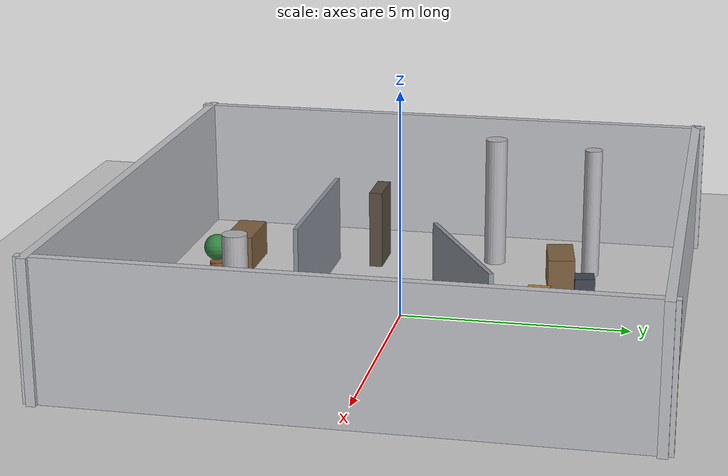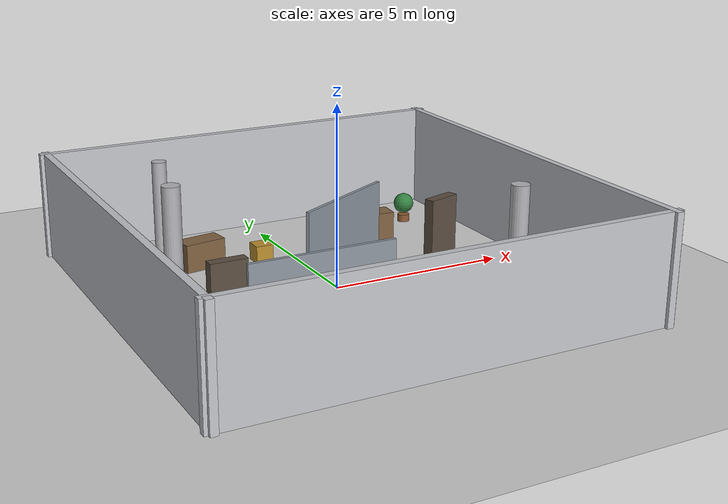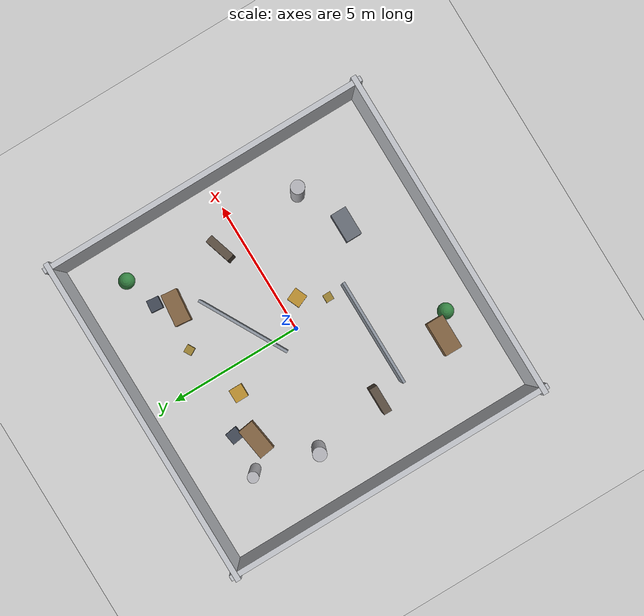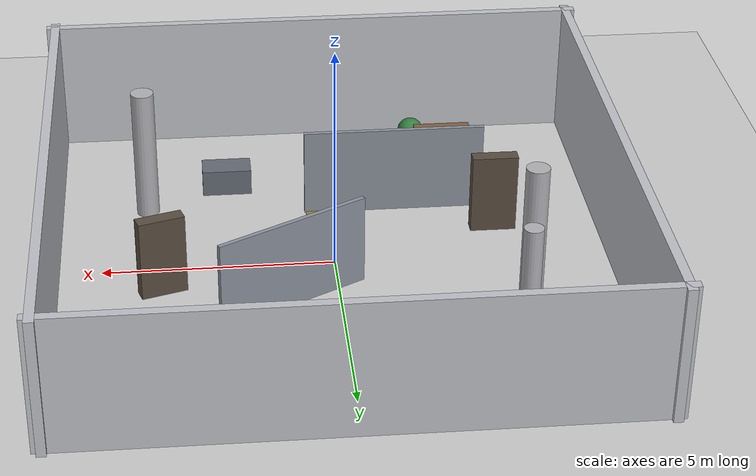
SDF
<?xml version="1.0"?>
<sdf version="1.7">
  <world name="gemstone_office">

    <include>
      <uri>model://ground_plane</uri>
    </include>
    <include>
      <uri>model://sun</uri>
    </include>

    <physics type="ode">
      <max_step_size>0.001</max_step_size>
      <real_time_factor>1</real_time_factor>
      <real_time_update_rate>1000</real_time_update_rate>
    </physics>

    <scene>
      <ambient>0.6 0.6 0.6 1.0</ambient>
      <background>0.72 0.78 0.82 1.0</background>
      <shadows>true</shadows>
    </scene>

    <!-- ==================== Dış duvarlar ==================== -->
    <model name="wall_north">
      <static>true</static>
      <pose>0 -6 1.5 0 0 0</pose>
      <link name="link">
        <collision name="collision">
          <geometry><box><size>12.4 0.2 3.0</size></box></geometry>
        </collision>
        <visual name="visual">
          <geometry><box><size>12.4 0.2 3.0</size></box></geometry>
          <material>
            <ambient>0.75 0.76 0.78 1.0</ambient>
            <diffuse>0.75 0.76 0.78 1.0</diffuse>
            <specular>0.1 0.1 0.1 1.0</specular>
          </material>
        </visual>
      </link>
    </model>

    <model name="wall_south">
      <static>true</static>
      <pose>0 6 1.5 0 0 0</pose>
      <link name="link">
        <collision name="collision">
          <geometry><box><size>12.4 0.2 3.0</size></box></geometry>
        </collision>
        <visual name="visual">
          <geometry><box><size>12.4 0.2 3.0</size></box></geometry>
          <material>
            <ambient>0.75 0.76 0.78 1.0</ambient>
            <diffuse>0.75 0.76 0.78 1.0</diffuse>
            <specular>0.1 0.1 0.1 1.0</specular>
          </material>
        </visual>
      </link>
    </model>

    <model name="wall_west">
      <static>true</static>
      <pose>-6 0 1.5 0 0 0</pose>
      <link name="link">
        <collision name="collision">
          <geometry><box><size>0.2 12.4 3.0</size></box></geometry>
        </collision>
        <visual name="visual">
          <geometry><box><size>0.2 12.4 3.0</size></box></geometry>
          <material>
            <ambient>0.75 0.76 0.78 1.0</ambient>
            <diffuse>0.75 0.76 0.78 1.0</diffuse>
            <specular>0.1 0.1 0.1 1.0</specular>
          </material>
        </visual>
      </link>
    </model>

    <model name="wall_east">
      <static>true</static>
      <pose>6 0 1.5 0 0 0</pose>
      <link name="link">
        <collision name="collision">
          <geometry><box><size>0.2 12.4 3.0</size></box></geometry>
        </collision>
        <visual name="visual">
          <geometry><box><size>0.2 12.4 3.0</size></box></geometry>
          <material>
            <ambient>0.75 0.76 0.78 1.0</ambient>
            <diffuse>0.75 0.76 0.78 1.0</diffuse>
            <specular>0.1 0.1 0.1 1.0</specular>
          </material>
        </visual>
      </link>
    </model>

    <!-- ==================== İç bölme duvarları ==================== -->
    <model name="partition_1">
      <static>true</static>
      <pose>-1.5 -2.2 1.0 0 0 0</pose>
      <link name="link">
        <collision name="collision">
          <geometry><box><size>4.0 0.1 2.0</size></box></geometry>
        </collision>
        <visual name="visual">
          <geometry><box><size>4.0 0.1 2.0</size></box></geometry>
          <material>
            <ambient>0.55 0.58 0.62 1.0</ambient>
            <diffuse>0.55 0.58 0.62 1.0</diffuse>
            <specular>0.1 0.1 0.1 1.0</specular>
          </material>
        </visual>
      </link>
    </model>

    <model name="partition_2">
      <static>true</static>
      <pose>1.0 1.5 1.0 0 0 0.5</pose>
      <link name="link">
        <collision name="collision">
          <geometry><box><size>3.5 0.1 2.0</size></box></geometry>
        </collision>
        <visual name="visual">
          <geometry><box><size>3.5 0.1 2.0</size></box></geometry>
          <material>
            <ambient>0.55 0.58 0.62 1.0</ambient>
            <diffuse>0.55 0.58 0.62 1.0</diffuse>
            <specular>0.1 0.1 0.1 1.0</specular>
          </material>
        </visual>
      </link>
    </model>

    <!-- ==================== Sütunlar ==================== -->
    <model name="column_1">
      <static>true</static>
      <pose>-4.0 1.5 1.5 0 0 0</pose>
      <link name="link">
        <collision name="collision">
          <geometry><cylinder><radius>0.25</radius><length>3.0</length></cylinder></geometry>
        </collision>
        <visual name="visual">
          <geometry><cylinder><radius>0.25</radius><length>3.0</length></cylinder></geometry>
          <material>
            <ambient>0.7 0.7 0.72 1.0</ambient>
            <diffuse>0.7 0.7 0.72 1.0</diffuse>
            <specular>0.2 0.2 0.2 1.0</specular>
          </material>
        </visual>
      </link>
    </model>

    <model name="column_2">
      <static>true</static>
      <pose>4.0 -2.5 1.5 0 0 0</pose>
      <link name="link">
        <collision name="collision">
          <geometry><cylinder><radius>0.25</radius><length>3.0</length></cylinder></geometry>
        </collision>
        <visual name="visual">
          <geometry><cylinder><radius>0.25</radius><length>3.0</length></cylinder></geometry>
          <material>
            <ambient>0.7 0.7 0.72 1.0</ambient>
            <diffuse>0.7 0.7 0.72 1.0</diffuse>
            <specular>0.2 0.2 0.2 1.0</specular>
          </material>
        </visual>
      </link>
    </model>

    <model name="column_3">
      <static>true</static>
      <pose>-3.5 3.8 1.5 0 0 0</pose>
      <link name="link">
        <collision name="collision">
          <geometry><cylinder><radius>0.2</radius><length>3.0</length></cylinder></geometry>
        </collision>
        <visual name="visual">
          <geometry><cylinder><radius>0.2</radius><length>3.0</length></cylinder></geometry>
          <material>
            <ambient>0.7 0.7 0.72 1.0</ambient>
            <diffuse>0.7 0.7 0.72 1.0</diffuse>
            <specular>0.2 0.2 0.2 1.0</specular>
          </material>
        </visual>
      </link>
    </model>

    <!-- ==================== Masalar ==================== -->
    <model name="desk_1">
      <static>true</static>
      <pose>-2.6 3.2 0.4 0 0 0.15</pose>
      <link name="link">
        <collision name="collision">
          <geometry><box><size>1.2 0.6 0.8</size></box></geometry>
        </collision>
        <visual name="visual">
          <geometry><box><size>1.2 0.6 0.8</size></box></geometry>
          <material>
            <ambient>0.5 0.38 0.25 1.0</ambient>
            <diffuse>0.5 0.38 0.25 1.0</diffuse>
            <specular>0.1 0.1 0.1 1.0</specular>
          </material>
        </visual>
      </link>
    </model>

    <model name="desk_2">
      <static>true</static>
      <pose>2.8 3.2 0.4 0 0 -0.1</pose>
      <link name="link">
        <collision name="collision">
          <geometry><box><size>1.2 0.6 0.8</size></box></geometry>
        </collision>
        <visual name="visual">
          <geometry><box><size>1.2 0.6 0.8</size></box></geometry>
          <material>
            <ambient>0.5 0.38 0.25 1.0</ambient>
            <diffuse>0.5 0.38 0.25 1.0</diffuse>
            <specular>0.1 0.1 0.1 1.0</specular>
          </material>
        </visual>
      </link>
    </model>

    <model name="desk_3">
      <static>true</static>
      <pose>-2.9 -4.3 0.4 0 0 0.0</pose>
      <link name="link">
        <collision name="collision">
          <geometry><box><size>1.3 0.65 0.8</size></box></geometry>
        </collision>
        <visual name="visual">
          <geometry><box><size>1.3 0.65 0.8</size></box></geometry>
          <material>
            <ambient>0.5 0.38 0.25 1.0</ambient>
            <diffuse>0.5 0.38 0.25 1.0</diffuse>
            <specular>0.1 0.1 0.1 1.0</specular>
          </material>
        </visual>
      </link>
    </model>

    <!-- ==================== Kitaplıklar ==================== -->
    <model name="bookshelf_1">
      <static>true</static>
      <pose>-3.6 -1.2 0.9 0 0 0</pose>
      <link name="link">
        <collision name="collision">
          <geometry><box><size>1.0 0.3 1.8</size></box></geometry>
        </collision>
        <visual name="visual">
          <geometry><box><size>1.0 0.3 1.8</size></box></geometry>
          <material>
            <ambient>0.35 0.3 0.25 1.0</ambient>
            <diffuse>0.35 0.3 0.25 1.0</diffuse>
            <specular>0.05 0.05 0.05 1.0</specular>
          </material>
        </visual>
      </link>
    </model>

    <model name="bookshelf_2">
      <static>true</static>
      <pose>3.7 0.8 0.9 0 0 0.3</pose>
      <link name="link">
        <collision name="collision">
          <geometry><box><size>1.0 0.3 1.8</size></box></geometry>
        </collision>
        <visual name="visual">
          <geometry><box><size>1.0 0.3 1.8</size></box></geometry>
          <material>
            <ambient>0.35 0.3 0.25 1.0</ambient>
            <diffuse>0.35 0.3 0.25 1.0</diffuse>
            <specular>0.05 0.05 0.05 1.0</specular>
          </material>
        </visual>
      </link>
    </model>

    <!-- ==================== Orta sehpa ==================== -->
    <model name="coffee_table">
      <static>true</static>
      <pose>2.2 -3.4 0.3 0 0 0.0</pose>
      <link name="link">
        <collision name="collision">
          <geometry><box><size>1.1 0.6 0.6</size></box></geometry>
        </collision>
        <visual name="visual">
          <geometry><box><size>1.1 0.6 0.6</size></box></geometry>
          <material>
            <ambient>0.4 0.42 0.46 1.0</ambient>
            <diffuse>0.4 0.42 0.46 1.0</diffuse>
            <specular>0.15 0.15 0.15 1.0</specular>
          </material>
        </visual>
      </link>
    </model>

    <!-- ==================== Kasalar / kutular (engel) ==================== -->
    <model name="crate_1">
      <static>true</static>
      <pose>0.9 -0.6 0.25 0 0 0.4</pose>
      <link name="link">
        <collision name="collision">
          <geometry><box><size>0.5 0.5 0.5</size></box></geometry>
        </collision>
        <visual name="visual">
          <geometry><box><size>0.5 0.5 0.5</size></box></geometry>
          <material>
            <ambient>0.72 0.55 0.18 1.0</ambient>
            <diffuse>0.72 0.55 0.18 1.0</diffuse>
            <specular>0.1 0.1 0.1 1.0</specular>
          </material>
        </visual>
      </link>
    </model>

    <model name="crate_2">
      <static>true</static>
      <pose>0.35 -1.55 0.15 0 0 0.0</pose>
      <link name="link">
        <collision name="collision">
          <geometry><box><size>0.3 0.3 0.3</size></box></geometry>
        </collision>
        <visual name="visual">
          <geometry><box><size>0.3 0.3 0.3</size></box></geometry>
          <material>
            <ambient>0.6 0.5 0.2 1.0</ambient>
            <diffuse>0.6 0.5 0.2 1.0</diffuse>
            <specular>0.1 0.1 0.1 1.0</specular>
          </material>
        </visual>
      </link>
    </model>

    <model name="crate_3">
      <static>true</static>
      <pose>-0.9 2.9 0.25 0 0 0.0</pose>
      <link name="link">
        <collision name="collision">
          <geometry><box><size>0.5 0.5 0.5</size></box></geometry>
        </collision>
        <visual name="visual">
          <geometry><box><size>0.5 0.5 0.5</size></box></geometry>
          <material>
            <ambient>0.72 0.55 0.18 1.0</ambient>
            <diffuse>0.72 0.55 0.18 1.0</diffuse>
            <specular>0.1 0.1 0.1 1.0</specular>
          </material>
        </visual>
      </link>
    </model>

    <model name="crate_4">
      <static>true</static>
      <pose>1.3 3.6 0.15 0 0 0.5</pose>
      <link name="link">
        <collision name="collision">
          <geometry><box><size>0.3 0.3 0.3</size></box></geometry>
        </collision>
        <visual name="visual">
          <geometry><box><size>0.3 0.3 0.3</size></box></geometry>
          <material>
            <ambient>0.6 0.5 0.2 1.0</ambient>
            <diffuse>0.6 0.5 0.2 1.0</diffuse>
            <specular>0.1 0.1 0.1 1.0</specular>
          </material>
        </visual>
      </link>
    </model>

    <!-- ==================== Bitkiler (saksı + yeşillik) ==================== -->
    <model name="plant_1">
      <static>true</static>
      <pose>-2.2 -4.8 0 0 0 0</pose>
      <link name="pot">
        <collision name="collision">
          <geometry><cylinder><radius>0.18</radius><length>0.4</length></cylinder></geometry>
        </collision>
        <visual name="visual">
          <geometry><cylinder><radius>0.18</radius><length>0.4</length></cylinder></geometry>
          <material>
            <ambient>0.55 0.35 0.2 1.0</ambient>
            <diffuse>0.55 0.35 0.2 1.0</diffuse>
            <specular>0.1 0.1 0.1 1.0</specular>
          </material>
        </visual>
      </link>
      <link name="foliage">
        <pose>0 0 0.55 0 0 0</pose>
        <collision name="collision">
          <geometry><sphere><radius>0.3</radius></sphere></geometry>
        </collision>
        <visual name="visual">
          <geometry><sphere><radius>0.3</radius></sphere></geometry>
          <material>
            <ambient>0.2 0.5 0.25 1.0</ambient>
            <diffuse>0.2 0.5 0.25 1.0</diffuse>
            <specular>0.05 0.05 0.05 1.0</specular>
          </material>
        </visual>
      </link>
      <joint name="pot_foliage" type="fixed">
        <parent>pot</parent>
        <child>foliage</child>
      </joint>
    </model>

    <model name="plant_2">
      <static>true</static>
      <pose>4.5 4.2 0 0 0 0</pose>
      <link name="pot">
        <collision name="collision">
          <geometry><cylinder><radius>0.18</radius><length>0.4</length></cylinder></geometry>
        </collision>
        <visual name="visual">
          <geometry><cylinder><radius>0.18</radius><length>0.4</length></cylinder></geometry>
          <material>
            <ambient>0.55 0.35 0.2 1.0</ambient>
            <diffuse>0.55 0.35 0.2 1.0</diffuse>
            <specular>0.1 0.1 0.1 1.0</specular>
          </material>
        </visual>
      </link>
      <link name="foliage">
        <pose>0 0 0.55 0 0 0</pose>
        <collision name="collision">
          <geometry><sphere><radius>0.3</radius></sphere></geometry>
        </collision>
        <visual name="visual">
          <geometry><sphere><radius>0.3</radius></sphere></geometry>
          <material>
            <ambient>0.2 0.5 0.25 1.0</ambient>
            <diffuse>0.2 0.5 0.25 1.0</diffuse>
            <specular>0.05 0.05 0.05 1.0</specular>
          </material>
        </visual>
      </link>
      <joint name="pot_foliage" type="fixed">
        <parent>pot</parent>
        <child>foliage</child>
      </joint>
    </model>

    <!-- ==================== Sandalyeler ==================== -->
    <model name="chair_1">
      <static>true</static>
      <pose>-2.1 3.8 0.22 0 0 0.15</pose>
      <link name="link">
        <collision name="collision">
          <geometry><box><size>0.45 0.45 0.44</size></box></geometry>
        </collision>
        <visual name="visual">
          <geometry><box><size>0.45 0.45 0.44</size></box></geometry>
          <material>
            <ambient>0.25 0.28 0.33 1.0</ambient>
            <diffuse>0.25 0.28 0.33 1.0</diffuse>
            <specular>0.1 0.1 0.1 1.0</specular>
          </material>
        </visual>
      </link>
    </model>

    <model name="chair_2">
      <static>true</static>
      <pose>3.3 3.8 0.22 0 0 -0.1</pose>
      <link name="link">
        <collision name="collision">
          <geometry><box><size>0.45 0.45 0.44</size></box></geometry>
        </collision>
        <visual name="visual">
          <geometry><box><size>0.45 0.45 0.44</size></box></geometry>
          <material>
            <ambient>0.25 0.28 0.33 1.0</ambient>
            <diffuse>0.25 0.28 0.33 1.0</diffuse>
            <specular>0.1 0.1 0.1 1.0</specular>
          </material>
        </visual>
      </link>
    </model>

  </world>
</sdf>
